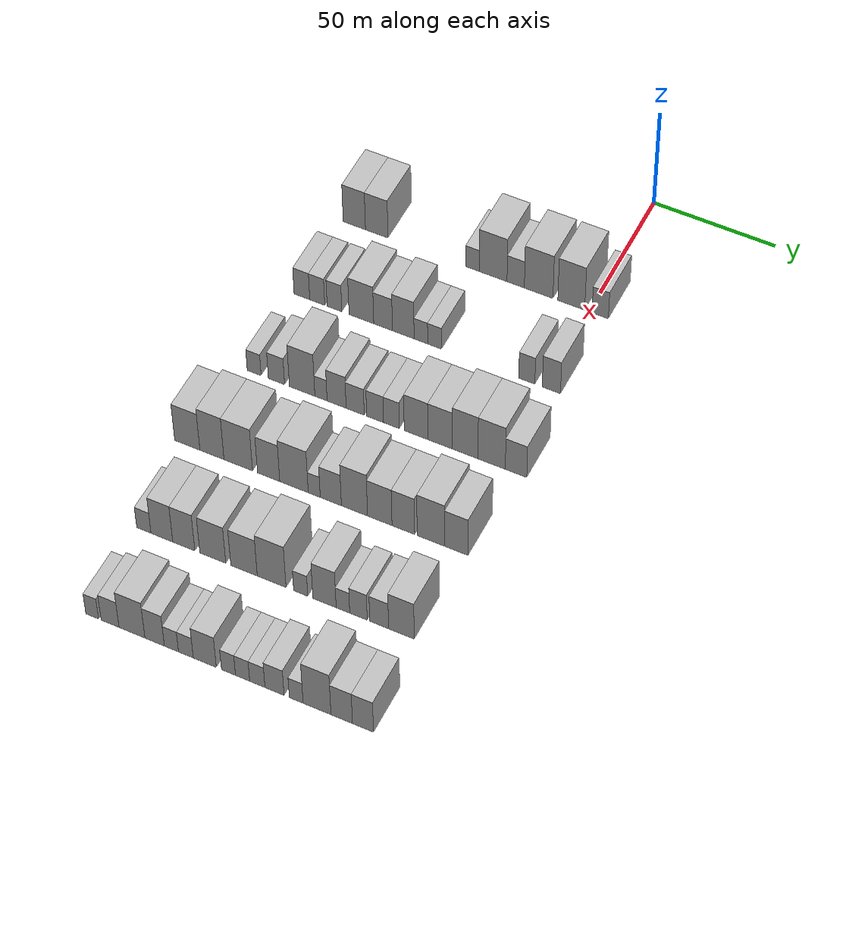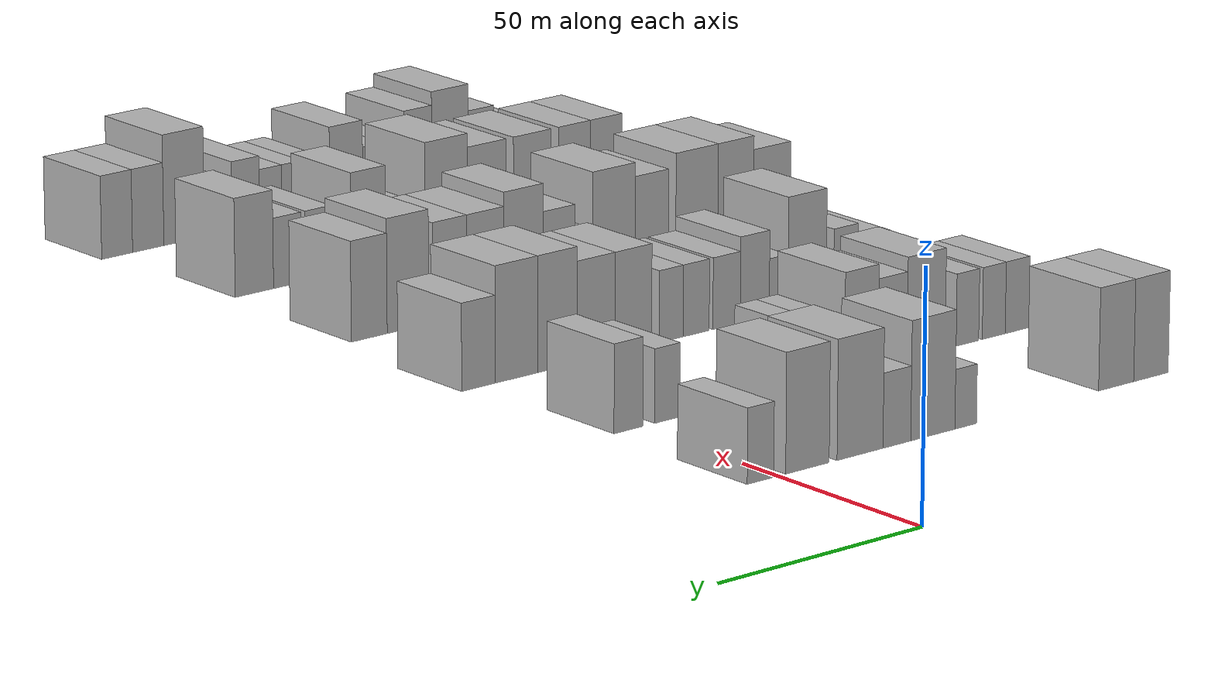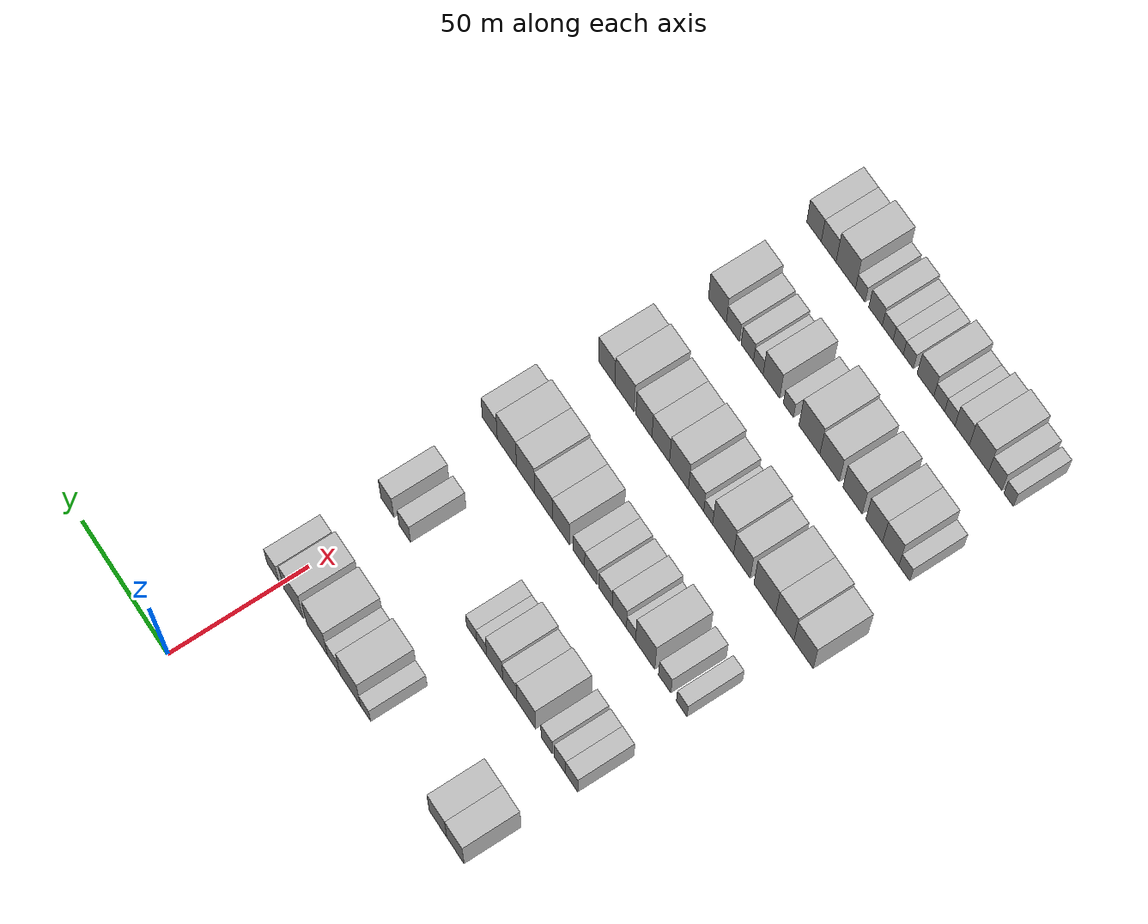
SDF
<sdf version="1.6">
 <world name="default">
  <model name="building_59">
   <static>1</static>
   <pose>50.0000 -98.0657 0 0.000000 0.000000 0.000000</pose>
   <link name="link">
    <pose>0 0 10.50 0 0 0</pose>
    <collision name="collision"><geometry><box><size>20.0000 9.4777 21.0000</size></box></geometry></collision>
    <visual name="visual">
     <cast_shadows>0</cast_shadows>
     <geometry><box><size>20.0000 9.4777 21.0000</size></box></geometry>
     <material>
      <script>
       <uri>model://HANNAS_wall/materials/scripts</uri>
       <uri>model://HANNAS_wall/materials/textures</uri>
       <name>vrc/HANNAS_wall</name>
      </script>
     </material>
    </visual>
   </link>
  </model>
  <model name="building_60">
   <static>1</static>
   <pose>50.0000 -88.5477 0 0.000000 0.000000 0.000000</pose>
   <link name="link">
    <pose>0 0 10.50 0 0 0</pose>
    <collision name="collision"><geometry><box><size>20.0000 9.5583 21.0000</size></box></geometry></collision>
    <visual name="visual">
     <cast_shadows>0</cast_shadows>
     <geometry><box><size>20.0000 9.5583 21.0000</size></box></geometry>
     <material>
      <script>
       <uri>model://HANNAS_wall/materials/scripts</uri>
       <uri>model://HANNAS_wall/materials/textures</uri>
       <name>vrc/HANNAS_wall</name>
      </script>
     </material>
    </visual>
   </link>
  </model>
  <model name="building_61">
   <static>1</static>
   <pose>50.0000 -48.2554 0 0.000000 0.000000 0.000000</pose>
   <link name="link">
    <pose>0 0 6.00 0 0 0</pose>
    <collision name="collision"><geometry><box><size>20.0000 5.6754 12.0000</size></box></geometry></collision>
    <visual name="visual">
     <cast_shadows>0</cast_shadows>
     <geometry><box><size>20.0000 5.6754 12.0000</size></box></geometry>
     <material>
      <script>
       <uri>model://HANNAS_wall/materials/scripts</uri>
       <uri>model://HANNAS_wall/materials/textures</uri>
       <name>vrc/HANNAS_wall</name>
      </script>
     </material>
    </visual>
   </link>
  </model>
  <model name="building_62">
   <static>1</static>
   <pose>50.0000 -39.6588 0 0.000000 0.000000 0.000000</pose>
   <link name="link">
    <pose>0 0 12.00 0 0 0</pose>
    <collision name="collision"><geometry><box><size>20.0000 11.5177 24.0000</size></box></geometry></collision>
    <visual name="visual">
     <cast_shadows>0</cast_shadows>
     <geometry><box><size>20.0000 11.5177 24.0000</size></box></geometry>
     <material>
      <script>
       <uri>model://HANNAS_wall/materials/scripts</uri>
       <uri>model://HANNAS_wall/materials/textures</uri>
       <name>vrc/HANNAS_wall</name>
      </script>
     </material>
    </visual>
   </link>
  </model>
  <model name="building_63">
   <static>1</static>
   <pose>50.0000 -30.3144 0 0.000000 0.000000 0.000000</pose>
   <link name="link">
    <pose>0 0 7.50 0 0 0</pose>
    <collision name="collision"><geometry><box><size>20.0000 7.1711 15.0000</size></box></geometry></collision>
    <visual name="visual">
     <cast_shadows>0</cast_shadows>
     <geometry><box><size>20.0000 7.1711 15.0000</size></box></geometry>
     <material>
      <script>
       <uri>model://HANNAS_wall/materials/scripts</uri>
       <uri>model://HANNAS_wall/materials/textures</uri>
       <name>vrc/HANNAS_wall</name>
      </script>
     </material>
    </visual>
   </link>
  </model>
  <model name="building_64">
   <static>1</static>
   <pose>50.0000 -20.8321 0 0.000000 0.000000 0.000000</pose>
   <link name="link">
    <pose>0 0 12.00 0 0 0</pose>
    <collision name="collision"><geometry><box><size>20.0000 11.7934 24.0000</size></box></geometry></collision>
    <visual name="visual">
     <cast_shadows>0</cast_shadows>
     <geometry><box><size>20.0000 11.7934 24.0000</size></box></geometry>
     <material>
      <script>
       <uri>model://HANNAS_wall/materials/scripts</uri>
       <uri>model://HANNAS_wall/materials/textures</uri>
       <name>vrc/HANNAS_wall</name>
      </script>
     </material>
    </visual>
   </link>
  </model>
  <model name="building_65">
   <static>1</static>
   <pose>50.0000 -7.4332 0 0.000000 0.000000 0.000000</pose>
   <link name="link">
    <pose>0 0 12.00 0 0 0</pose>
    <collision name="collision"><geometry><box><size>20.0000 11.0044 24.0000</size></box></geometry></collision>
    <visual name="visual">
     <cast_shadows>0</cast_shadows>
     <geometry><box><size>20.0000 11.0044 24.0000</size></box></geometry>
     <material>
      <script>
       <uri>model://HANNAS_wall/materials/scripts</uri>
       <uri>model://HANNAS_wall/materials/textures</uri>
       <name>vrc/HANNAS_wall</name>
      </script>
     </material>
    </visual>
   </link>
  </model>
  <model name="building_66">
   <static>1</static>
   <pose>50.0000 4.3997 0 0.000000 0.000000 0.000000</pose>
   <link name="link">
    <pose>0 0 7.50 0 0 0</pose>
    <collision name="collision"><geometry><box><size>20.0000 6.6614 15.0000</size></box></geometry></collision>
    <visual name="visual">
     <cast_shadows>0</cast_shadows>
     <geometry><box><size>20.0000 6.6614 15.0000</size></box></geometry>
     <material>
      <script>
       <uri>model://HANNAS_wall/materials/scripts</uri>
       <uri>model://HANNAS_wall/materials/textures</uri>
       <name>vrc/HANNAS_wall</name>
      </script>
     </material>
    </visual>
   </link>
  </model>
  <model name="building_197">
   <static>1</static>
   <pose>90.0000 -99.7617 0 0.000000 0.000000 0.000000</pose>
   <link name="link">
    <pose>0 0 7.50 0 0 0</pose>
    <collision name="collision"><geometry><box><size>20.0000 6.5609 15.0000</size></box></geometry></collision>
    <visual name="visual">
     <cast_shadows>0</cast_shadows>
     <geometry><box><size>20.0000 6.5609 15.0000</size></box></geometry>
     <material>
      <script>
       <uri>model://HANNAS_wall/materials/scripts</uri>
       <uri>model://HANNAS_wall/materials/textures</uri>
       <name>vrc/HANNAS_wall</name>
      </script>
     </material>
    </visual>
   </link>
  </model>
  <model name="building_198">
   <static>1</static>
   <pose>90.0000 -93.3326 0 0.000000 0.000000 0.000000</pose>
   <link name="link">
    <pose>0 0 7.50 0 0 0</pose>
    <collision name="collision"><geometry><box><size>20.0000 6.2973 15.0000</size></box></geometry></collision>
    <visual name="visual">
     <cast_shadows>0</cast_shadows>
     <geometry><box><size>20.0000 6.2973 15.0000</size></box></geometry>
     <material>
      <script>
       <uri>model://HANNAS_wall/materials/scripts</uri>
       <uri>model://HANNAS_wall/materials/textures</uri>
       <name>vrc/HANNAS_wall</name>
      </script>
     </material>
    </visual>
   </link>
  </model>
  <model name="building_199">
   <static>1</static>
   <pose>90.0000 -86.1024 0 0.000000 0.000000 0.000000</pose>
   <link name="link">
    <pose>0 0 7.50 0 0 0</pose>
    <collision name="collision"><geometry><box><size>20.0000 6.1631 15.0000</size></box></geometry></collision>
    <visual name="visual">
     <cast_shadows>0</cast_shadows>
     <geometry><box><size>20.0000 6.1631 15.0000</size></box></geometry>
     <material>
      <script>
       <uri>model://HANNAS_wall/materials/scripts</uri>
       <uri>model://HANNAS_wall/materials/textures</uri>
       <name>vrc/HANNAS_wall</name>
      </script>
     </material>
    </visual>
   </link>
  </model>
  <model name="building_200">
   <static>1</static>
   <pose>90.0000 -74.8741 0 0.000000 0.000000 0.000000</pose>
   <link name="link">
    <pose>0 0 10.50 0 0 0</pose>
    <collision name="collision"><geometry><box><size>20.0000 10.2935 21.0000</size></box></geometry></collision>
    <visual name="visual">
     <cast_shadows>0</cast_shadows>
     <geometry><box><size>20.0000 10.2935 21.0000</size></box></geometry>
     <material>
      <script>
       <uri>model://HANNAS_wall/materials/scripts</uri>
       <uri>model://HANNAS_wall/materials/textures</uri>
       <name>vrc/HANNAS_wall</name>
      </script>
     </material>
    </visual>
   </link>
  </model>
  <model name="building_201">
   <static>1</static>
   <pose>90.0000 -65.8512 0 0.000000 0.000000 0.000000</pose>
   <link name="link">
    <pose>0 0 9.00 0 0 0</pose>
    <collision name="collision"><geometry><box><size>20.0000 7.7523 18.0000</size></box></geometry></collision>
    <visual name="visual">
     <cast_shadows>0</cast_shadows>
     <geometry><box><size>20.0000 7.7523 18.0000</size></box></geometry>
     <material>
      <script>
       <uri>model://HANNAS_wall/materials/scripts</uri>
       <uri>model://HANNAS_wall/materials/textures</uri>
       <name>vrc/HANNAS_wall</name>
      </script>
     </material>
    </visual>
   </link>
  </model>
  <model name="building_202">
   <static>1</static>
   <pose>90.0000 -57.5063 0 0.000000 0.000000 0.000000</pose>
   <link name="link">
    <pose>0 0 10.50 0 0 0</pose>
    <collision name="collision"><geometry><box><size>20.0000 8.9376 21.0000</size></box></geometry></collision>
    <visual name="visual">
     <cast_shadows>0</cast_shadows>
     <geometry><box><size>20.0000 8.9376 21.0000</size></box></geometry>
     <material>
      <script>
       <uri>model://HANNAS_wall/materials/scripts</uri>
       <uri>model://HANNAS_wall/materials/textures</uri>
       <name>vrc/HANNAS_wall</name>
      </script>
     </material>
    </visual>
   </link>
  </model>
  <model name="building_203">
   <static>1</static>
   <pose>90.0000 -50.2398 0 0.000000 0.000000 0.000000</pose>
   <link name="link">
    <pose>0 0 6.00 0 0 0</pose>
    <collision name="collision"><geometry><box><size>20.0000 5.5954 12.0000</size></box></geometry></collision>
    <visual name="visual">
     <cast_shadows>0</cast_shadows>
     <geometry><box><size>20.0000 5.5954 12.0000</size></box></geometry>
     <material>
      <script>
       <uri>model://HANNAS_wall/materials/scripts</uri>
       <uri>model://HANNAS_wall/materials/textures</uri>
       <name>vrc/HANNAS_wall</name>
      </script>
     </material>
    </visual>
   </link>
  </model>
  <model name="building_204">
   <static>1</static>
   <pose>90.0000 -44.6029 0 0.000000 0.000000 0.000000</pose>
   <link name="link">
    <pose>0 0 6.00 0 0 0</pose>
    <collision name="collision"><geometry><box><size>20.0000 5.6784 12.0000</size></box></geometry></collision>
    <visual name="visual">
     <cast_shadows>0</cast_shadows>
     <geometry><box><size>20.0000 5.6784 12.0000</size></box></geometry>
     <material>
      <script>
       <uri>model://HANNAS_wall/materials/scripts</uri>
       <uri>model://HANNAS_wall/materials/textures</uri>
       <name>vrc/HANNAS_wall</name>
      </script>
     </material>
    </visual>
   </link>
  </model>
  <model name="building_205">
   <static>1</static>
   <pose>90.0000 -7.0333 0 0.000000 0.000000 0.000000</pose>
   <link name="link">
    <pose>0 0 7.50 0 0 0</pose>
    <collision name="collision"><geometry><box><size>20.0000 6.4869 15.0000</size></box></geometry></collision>
    <visual name="visual">
     <cast_shadows>0</cast_shadows>
     <geometry><box><size>20.0000 6.4869 15.0000</size></box></geometry>
     <material>
      <script>
       <uri>model://HANNAS_wall/materials/scripts</uri>
       <uri>model://HANNAS_wall/materials/textures</uri>
       <name>vrc/HANNAS_wall</name>
      </script>
     </material>
    </visual>
   </link>
  </model>
  <model name="building_206">
   <static>1</static>
   <pose>90.0000 2.8644 0 0.000000 0.000000 0.000000</pose>
   <link name="link">
    <pose>0 0 9.00 0 0 0</pose>
    <collision name="collision"><geometry><box><size>20.0000 7.3085 18.0000</size></box></geometry></collision>
    <visual name="visual">
     <cast_shadows>0</cast_shadows>
     <geometry><box><size>20.0000 7.3085 18.0000</size></box></geometry>
     <material>
      <script>
       <uri>model://HANNAS_wall/materials/scripts</uri>
       <uri>model://HANNAS_wall/materials/textures</uri>
       <name>vrc/HANNAS_wall</name>
      </script>
     </material>
    </visual>
   </link>
  </model>
  <model name="building_333">
   <static>1</static>
   <pose>130.0000 -98.7478 0 0.000000 0.000000 0.000000</pose>
   <link name="link">
    <pose>0 0 6.00 0 0 0</pose>
    <collision name="collision"><geometry><box><size>20.0000 5.7404 12.0000</size></box></geometry></collision>
    <visual name="visual">
     <cast_shadows>0</cast_shadows>
     <geometry><box><size>20.0000 5.7404 12.0000</size></box></geometry>
     <material>
      <script>
       <uri>model://HANNAS_wall/materials/scripts</uri>
       <uri>model://HANNAS_wall/materials/textures</uri>
       <name>vrc/HANNAS_wall</name>
      </script>
     </material>
    </visual>
   </link>
  </model>
  <model name="building_334">
   <static>1</static>
   <pose>130.0000 -89.5169 0 0.000000 0.000000 0.000000</pose>
   <link name="link">
    <pose>0 0 7.50 0 0 0</pose>
    <collision name="collision"><geometry><box><size>20.0000 6.7214 15.0000</size></box></geometry></collision>
    <visual name="visual">
     <cast_shadows>0</cast_shadows>
     <geometry><box><size>20.0000 6.7214 15.0000</size></box></geometry>
     <material>
      <script>
       <uri>model://HANNAS_wall/materials/scripts</uri>
       <uri>model://HANNAS_wall/materials/textures</uri>
       <name>vrc/HANNAS_wall</name>
      </script>
     </material>
    </visual>
   </link>
  </model>
  <model name="building_335">
   <static>1</static>
   <pose>130.0000 -78.9233 0 0.000000 0.000000 0.000000</pose>
   <link name="link">
    <pose>0 0 12.00 0 0 0</pose>
    <collision name="collision"><geometry><box><size>20.0000 10.4658 24.0000</size></box></geometry></collision>
    <visual name="visual">
     <cast_shadows>0</cast_shadows>
     <geometry><box><size>20.0000 10.4658 24.0000</size></box></geometry>
     <material>
      <script>
       <uri>model://HANNAS_wall/materials/scripts</uri>
       <uri>model://HANNAS_wall/materials/textures</uri>
       <name>vrc/HANNAS_wall</name>
      </script>
     </material>
    </visual>
   </link>
  </model>
  <model name="building_336">
   <static>1</static>
   <pose>130.0000 -71.1840 0 0.000000 0.000000 0.000000</pose>
   <link name="link">
    <pose>0 0 6.00 0 0 0</pose>
    <collision name="collision"><geometry><box><size>20.0000 5.0127 12.0000</size></box></geometry></collision>
    <visual name="visual">
     <cast_shadows>0</cast_shadows>
     <geometry><box><size>20.0000 5.0127 12.0000</size></box></geometry>
     <material>
      <script>
       <uri>model://HANNAS_wall/materials/scripts</uri>
       <uri>model://HANNAS_wall/materials/textures</uri>
       <name>vrc/HANNAS_wall</name>
      </script>
     </material>
    </visual>
   </link>
  </model>
  <model name="building_337">
   <static>1</static>
   <pose>130.0000 -64.7865 0 0.000000 0.000000 0.000000</pose>
   <link name="link">
    <pose>0 0 9.00 0 0 0</pose>
    <collision name="collision"><geometry><box><size>20.0000 7.7822 18.0000</size></box></geometry></collision>
    <visual name="visual">
     <cast_shadows>0</cast_shadows>
     <geometry><box><size>20.0000 7.7822 18.0000</size></box></geometry>
     <material>
      <script>
       <uri>model://HANNAS_wall/materials/scripts</uri>
       <uri>model://HANNAS_wall/materials/textures</uri>
       <name>vrc/HANNAS_wall</name>
      </script>
     </material>
    </visual>
   </link>
  </model>
  <model name="building_338">
   <static>1</static>
   <pose>130.0000 -57.2152 0 0.000000 0.000000 0.000000</pose>
   <link name="link">
    <pose>0 0 7.50 0 0 0</pose>
    <collision name="collision"><geometry><box><size>20.0000 7.3605 15.0000</size></box></geometry></collision>
    <visual name="visual">
     <cast_shadows>0</cast_shadows>
     <geometry><box><size>20.0000 7.3605 15.0000</size></box></geometry>
     <material>
      <script>
       <uri>model://HANNAS_wall/materials/scripts</uri>
       <uri>model://HANNAS_wall/materials/textures</uri>
       <name>vrc/HANNAS_wall</name>
      </script>
     </material>
    </visual>
   </link>
  </model>
  <model name="building_339">
   <static>1</static>
   <pose>130.0000 -49.1105 0 0.000000 0.000000 0.000000</pose>
   <link name="link">
    <pose>0 0 7.50 0 0 0</pose>
    <collision name="collision"><geometry><box><size>20.0000 6.8489 15.0000</size></box></geometry></collision>
    <visual name="visual">
     <cast_shadows>0</cast_shadows>
     <geometry><box><size>20.0000 6.8489 15.0000</size></box></geometry>
     <material>
      <script>
       <uri>model://HANNAS_wall/materials/scripts</uri>
       <uri>model://HANNAS_wall/materials/textures</uri>
       <name>vrc/HANNAS_wall</name>
      </script>
     </material>
    </visual>
   </link>
  </model>
  <model name="building_340">
   <static>1</static>
   <pose>130.0000 -42.5082 0 0.000000 0.000000 0.000000</pose>
   <link name="link">
    <pose>0 0 7.50 0 0 0</pose>
    <collision name="collision"><geometry><box><size>20.0000 6.3557 15.0000</size></box></geometry></collision>
    <visual name="visual">
     <cast_shadows>0</cast_shadows>
     <geometry><box><size>20.0000 6.3557 15.0000</size></box></geometry>
     <material>
      <script>
       <uri>model://HANNAS_wall/materials/scripts</uri>
       <uri>model://HANNAS_wall/materials/textures</uri>
       <name>vrc/HANNAS_wall</name>
      </script>
     </material>
    </visual>
   </link>
  </model>
  <model name="building_341">
   <static>1</static>
   <pose>130.0000 -32.5597 0 0.000000 0.000000 0.000000</pose>
   <link name="link">
    <pose>0 0 10.50 0 0 0</pose>
    <collision name="collision"><geometry><box><size>20.0000 9.5412 21.0000</size></box></geometry></collision>
    <visual name="visual">
     <cast_shadows>0</cast_shadows>
     <geometry><box><size>20.0000 9.5412 21.0000</size></box></geometry>
     <material>
      <script>
       <uri>model://HANNAS_wall/materials/scripts</uri>
       <uri>model://HANNAS_wall/materials/textures</uri>
       <name>vrc/HANNAS_wall</name>
      </script>
     </material>
    </visual>
   </link>
  </model>
  <model name="building_342">
   <static>1</static>
   <pose>130.0000 -22.8524 0 0.000000 0.000000 0.000000</pose>
   <link name="link">
    <pose>0 0 10.50 0 0 0</pose>
    <collision name="collision"><geometry><box><size>20.0000 9.8734 21.0000</size></box></geometry></collision>
    <visual name="visual">
     <cast_shadows>0</cast_shadows>
     <geometry><box><size>20.0000 9.8734 21.0000</size></box></geometry>
     <material>
      <script>
       <uri>model://HANNAS_wall/materials/scripts</uri>
       <uri>model://HANNAS_wall/materials/textures</uri>
       <name>vrc/HANNAS_wall</name>
      </script>
     </material>
    </visual>
   </link>
  </model>
  <model name="building_343">
   <static>1</static>
   <pose>130.0000 -12.8239 0 0.000000 0.000000 0.000000</pose>
   <link name="link">
    <pose>0 0 12.00 0 0 0</pose>
    <collision name="collision"><geometry><box><size>20.0000 10.1836 24.0000</size></box></geometry></collision>
    <visual name="visual">
     <cast_shadows>0</cast_shadows>
     <geometry><box><size>20.0000 10.1836 24.0000</size></box></geometry>
     <material>
      <script>
       <uri>model://HANNAS_wall/materials/scripts</uri>
       <uri>model://HANNAS_wall/materials/textures</uri>
       <name>vrc/HANNAS_wall</name>
      </script>
     </material>
    </visual>
   </link>
  </model>
  <model name="building_344">
   <static>1</static>
   <pose>130.0000 -2.3081 0 0.000000 0.000000 0.000000</pose>
   <link name="link">
    <pose>0 0 12.00 0 0 0</pose>
    <collision name="collision"><geometry><box><size>20.0000 10.8480 24.0000</size></box></geometry></collision>
    <visual name="visual">
     <cast_shadows>0</cast_shadows>
     <geometry><box><size>20.0000 10.8480 24.0000</size></box></geometry>
     <material>
      <script>
       <uri>model://HANNAS_wall/materials/scripts</uri>
       <uri>model://HANNAS_wall/materials/textures</uri>
       <name>vrc/HANNAS_wall</name>
      </script>
     </material>
    </visual>
   </link>
  </model>
  <model name="building_345">
   <static>1</static>
   <pose>130.0000 7.3540 0 0.000000 0.000000 0.000000</pose>
   <link name="link">
    <pose>0 0 9.00 0 0 0</pose>
    <collision name="collision"><geometry><box><size>20.0000 8.4761 18.0000</size></box></geometry></collision>
    <visual name="visual">
     <cast_shadows>0</cast_shadows>
     <geometry><box><size>20.0000 8.4761 18.0000</size></box></geometry>
     <material>
      <script>
       <uri>model://HANNAS_wall/materials/scripts</uri>
       <uri>model://HANNAS_wall/materials/textures</uri>
       <name>vrc/HANNAS_wall</name>
      </script>
     </material>
    </visual>
   </link>
  </model>
  <model name="building_469">
   <static>1</static>
   <pose>170.0000 -104.8446 0 0.000000 0.000000 0.000000</pose>
   <link name="link">
    <pose>0 0 10.50 0 0 0</pose>
    <collision name="collision"><geometry><box><size>20.0000 10.3075 21.0000</size></box></geometry></collision>
    <visual name="visual">
     <cast_shadows>0</cast_shadows>
     <geometry><box><size>20.0000 10.3075 21.0000</size></box></geometry>
     <material>
      <script>
       <uri>model://HANNAS_wall/materials/scripts</uri>
       <uri>model://HANNAS_wall/materials/textures</uri>
       <name>vrc/HANNAS_wall</name>
      </script>
     </material>
    </visual>
   </link>
  </model>
  <model name="building_470">
   <static>1</static>
   <pose>170.0000 -94.7613 0 0.000000 0.000000 0.000000</pose>
   <link name="link">
    <pose>0 0 12.00 0 0 0</pose>
    <collision name="collision"><geometry><box><size>20.0000 9.8592 24.0000</size></box></geometry></collision>
    <visual name="visual">
     <cast_shadows>0</cast_shadows>
     <geometry><box><size>20.0000 9.8592 24.0000</size></box></geometry>
     <material>
      <script>
       <uri>model://HANNAS_wall/materials/scripts</uri>
       <uri>model://HANNAS_wall/materials/textures</uri>
       <name>vrc/HANNAS_wall</name>
      </script>
     </material>
    </visual>
   </link>
  </model>
  <model name="building_471">
   <static>1</static>
   <pose>170.0000 -84.0153 0 0.000000 0.000000 0.000000</pose>
   <link name="link">
    <pose>0 0 12.00 0 0 0</pose>
    <collision name="collision"><geometry><box><size>20.0000 11.6328 24.0000</size></box></geometry></collision>
    <visual name="visual">
     <cast_shadows>0</cast_shadows>
     <geometry><box><size>20.0000 11.6328 24.0000</size></box></geometry>
     <material>
      <script>
       <uri>model://HANNAS_wall/materials/scripts</uri>
       <uri>model://HANNAS_wall/materials/textures</uri>
       <name>vrc/HANNAS_wall</name>
      </script>
     </material>
    </visual>
   </link>
  </model>
  <model name="building_472">
   <static>1</static>
   <pose>170.0000 -71.6988 0 0.000000 0.000000 0.000000</pose>
   <link name="link">
    <pose>0 0 10.50 0 0 0</pose>
    <collision name="collision"><geometry><box><size>20.0000 9.0001 21.0000</size></box></geometry></collision>
    <visual name="visual">
     <cast_shadows>0</cast_shadows>
     <geometry><box><size>20.0000 9.0001 21.0000</size></box></geometry>
     <material>
      <script>
       <uri>model://HANNAS_wall/materials/scripts</uri>
       <uri>model://HANNAS_wall/materials/textures</uri>
       <name>vrc/HANNAS_wall</name>
      </script>
     </material>
    </visual>
   </link>
  </model>
  <model name="building_473">
   <static>1</static>
   <pose>170.0000 -61.4677 0 0.000000 0.000000 0.000000</pose>
   <link name="link">
    <pose>0 0 12.00 0 0 0</pose>
    <collision name="collision"><geometry><box><size>20.0000 11.4622 24.0000</size></box></geometry></collision>
    <visual name="visual">
     <cast_shadows>0</cast_shadows>
     <geometry><box><size>20.0000 11.4622 24.0000</size></box></geometry>
     <material>
      <script>
       <uri>model://HANNAS_wall/materials/scripts</uri>
       <uri>model://HANNAS_wall/materials/textures</uri>
       <name>vrc/HANNAS_wall</name>
      </script>
     </material>
    </visual>
   </link>
  </model>
  <model name="building_474">
   <static>1</static>
   <pose>170.0000 -53.3344 0 0.000000 0.000000 0.000000</pose>
   <link name="link">
    <pose>0 0 6.00 0 0 0</pose>
    <collision name="collision"><geometry><box><size>20.0000 4.8044 12.0000</size></box></geometry></collision>
    <visual name="visual">
     <cast_shadows>0</cast_shadows>
     <geometry><box><size>20.0000 4.8044 12.0000</size></box></geometry>
     <material>
      <script>
       <uri>model://HANNAS_wall/materials/scripts</uri>
       <uri>model://HANNAS_wall/materials/textures</uri>
       <name>vrc/HANNAS_wall</name>
      </script>
     </material>
    </visual>
   </link>
  </model>
  <model name="building_475">
   <static>1</static>
   <pose>170.0000 -46.6991 0 0.000000 0.000000 0.000000</pose>
   <link name="link">
    <pose>0 0 9.00 0 0 0</pose>
    <collision name="collision"><geometry><box><size>20.0000 8.4661 18.0000</size></box></geometry></collision>
    <visual name="visual">
     <cast_shadows>0</cast_shadows>
     <geometry><box><size>20.0000 8.4661 18.0000</size></box></geometry>
     <material>
      <script>
       <uri>model://HANNAS_wall/materials/scripts</uri>
       <uri>model://HANNAS_wall/materials/textures</uri>
       <name>vrc/HANNAS_wall</name>
      </script>
     </material>
    </visual>
   </link>
  </model>
  <model name="building_476">
   <static>1</static>
   <pose>170.0000 -37.2568 0 0.000000 0.000000 0.000000</pose>
   <link name="link">
    <pose>0 0 12.00 0 0 0</pose>
    <collision name="collision"><geometry><box><size>20.0000 10.4187 24.0000</size></box></geometry></collision>
    <visual name="visual">
     <cast_shadows>0</cast_shadows>
     <geometry><box><size>20.0000 10.4187 24.0000</size></box></geometry>
     <material>
      <script>
       <uri>model://HANNAS_wall/materials/scripts</uri>
       <uri>model://HANNAS_wall/materials/textures</uri>
       <name>vrc/HANNAS_wall</name>
      </script>
     </material>
    </visual>
   </link>
  </model>
  <model name="building_477">
   <static>1</static>
   <pose>170.0000 -27.2084 0 0.000000 0.000000 0.000000</pose>
   <link name="link">
    <pose>0 0 10.50 0 0 0</pose>
    <collision name="collision"><geometry><box><size>20.0000 9.6780 21.0000</size></box></geometry></collision>
    <visual name="visual">
     <cast_shadows>0</cast_shadows>
     <geometry><box><size>20.0000 9.6780 21.0000</size></box></geometry>
     <material>
      <script>
       <uri>model://HANNAS_wall/materials/scripts</uri>
       <uri>model://HANNAS_wall/materials/textures</uri>
       <name>vrc/HANNAS_wall</name>
      </script>
     </material>
    </visual>
   </link>
  </model>
  <model name="building_478">
   <static>1</static>
   <pose>170.0000 -17.8995 0 0.000000 0.000000 0.000000</pose>
   <link name="link">
    <pose>0 0 10.50 0 0 0</pose>
    <collision name="collision"><geometry><box><size>20.0000 8.9398 21.0000</size></box></geometry></collision>
    <visual name="visual">
     <cast_shadows>0</cast_shadows>
     <geometry><box><size>20.0000 8.9398 21.0000</size></box></geometry>
     <material>
      <script>
       <uri>model://HANNAS_wall/materials/scripts</uri>
       <uri>model://HANNAS_wall/materials/textures</uri>
       <name>vrc/HANNAS_wall</name>
      </script>
     </material>
    </visual>
   </link>
  </model>
  <model name="building_479">
   <static>1</static>
   <pose>170.0000 -7.0554 0 0.000000 0.000000 0.000000</pose>
   <link name="link">
    <pose>0 0 12.00 0 0 0</pose>
    <collision name="collision"><geometry><box><size>20.0000 10.7483 24.0000</size></box></geometry></collision>
    <visual name="visual">
     <cast_shadows>0</cast_shadows>
     <geometry><box><size>20.0000 10.7483 24.0000</size></box></geometry>
     <material>
      <script>
       <uri>model://HANNAS_wall/materials/scripts</uri>
       <uri>model://HANNAS_wall/materials/textures</uri>
       <name>vrc/HANNAS_wall</name>
      </script>
     </material>
    </visual>
   </link>
  </model>
  <model name="building_480">
   <static>1</static>
   <pose>170.0000 2.9032 0 0.000000 0.000000 0.000000</pose>
   <link name="link">
    <pose>0 0 10.50 0 0 0</pose>
    <collision name="collision"><geometry><box><size>20.0000 9.1689 21.0000</size></box></geometry></collision>
    <visual name="visual">
     <cast_shadows>0</cast_shadows>
     <geometry><box><size>20.0000 9.1689 21.0000</size></box></geometry>
     <material>
      <script>
       <uri>model://HANNAS_wall/materials/scripts</uri>
       <uri>model://HANNAS_wall/materials/textures</uri>
       <name>vrc/HANNAS_wall</name>
      </script>
     </material>
    </visual>
   </link>
  </model>
  <model name="building_605">
   <static>1</static>
   <pose>210.0000 -100.4633 0 0.000000 0.000000 0.000000</pose>
   <link name="link">
    <pose>0 0 6.00 0 0 0</pose>
    <collision name="collision"><geometry><box><size>20.0000 5.7466 12.0000</size></box></geometry></collision>
    <visual name="visual">
     <cast_shadows>0</cast_shadows>
     <geometry><box><size>20.0000 5.7466 12.0000</size></box></geometry>
     <material>
      <script>
       <uri>model://HANNAS_wall/materials/scripts</uri>
       <uri>model://HANNAS_wall/materials/textures</uri>
       <name>vrc/HANNAS_wall</name>
      </script>
     </material>
    </visual>
   </link>
  </model>
  <model name="building_606">
   <static>1</static>
   <pose>210.0000 -93.2059 0 0.000000 0.000000 0.000000</pose>
   <link name="link">
    <pose>0 0 10.50 0 0 0</pose>
    <collision name="collision"><geometry><box><size>20.0000 8.7683 21.0000</size></box></geometry></collision>
    <visual name="visual">
     <cast_shadows>0</cast_shadows>
     <geometry><box><size>20.0000 8.7683 21.0000</size></box></geometry>
     <material>
      <script>
       <uri>model://HANNAS_wall/materials/scripts</uri>
       <uri>model://HANNAS_wall/materials/textures</uri>
       <name>vrc/HANNAS_wall</name>
      </script>
     </material>
    </visual>
   </link>
  </model>
  <model name="building_607">
   <static>1</static>
   <pose>210.0000 -84.3900 0 0.000000 0.000000 0.000000</pose>
   <link name="link">
    <pose>0 0 10.50 0 0 0</pose>
    <collision name="collision"><geometry><box><size>20.0000 8.8634 21.0000</size></box></geometry></collision>
    <visual name="visual">
     <cast_shadows>0</cast_shadows>
     <geometry><box><size>20.0000 8.8634 21.0000</size></box></geometry>
     <material>
      <script>
       <uri>model://HANNAS_wall/materials/scripts</uri>
       <uri>model://HANNAS_wall/materials/textures</uri>
       <name>vrc/HANNAS_wall</name>
      </script>
     </material>
    </visual>
   </link>
  </model>
  <model name="building_608">
   <static>1</static>
   <pose>210.0000 -72.7926 0 0.000000 0.000000 0.000000</pose>
   <link name="link">
    <pose>0 0 10.50 0 0 0</pose>
    <collision name="collision"><geometry><box><size>20.0000 10.3315 21.0000</size></box></geometry></collision>
    <visual name="visual">
     <cast_shadows>0</cast_shadows>
     <geometry><box><size>20.0000 10.3315 21.0000</size></box></geometry>
     <material>
      <script>
       <uri>model://HANNAS_wall/materials/scripts</uri>
       <uri>model://HANNAS_wall/materials/textures</uri>
       <name>vrc/HANNAS_wall</name>
      </script>
     </material>
    </visual>
   </link>
  </model>
  <model name="building_609">
   <static>1</static>
   <pose>210.0000 -60.3824 0 0.000000 0.000000 0.000000</pose>
   <link name="link">
    <pose>0 0 10.50 0 0 0</pose>
    <collision name="collision"><geometry><box><size>20.0000 10.4888 21.0000</size></box></geometry></collision>
    <visual name="visual">
     <cast_shadows>0</cast_shadows>
     <geometry><box><size>20.0000 10.4888 21.0000</size></box></geometry>
     <material>
      <script>
       <uri>model://HANNAS_wall/materials/scripts</uri>
       <uri>model://HANNAS_wall/materials/textures</uri>
       <name>vrc/HANNAS_wall</name>
      </script>
     </material>
    </visual>
   </link>
  </model>
  <model name="building_610">
   <static>1</static>
   <pose>210.0000 -49.4585 0 0.000000 0.000000 0.000000</pose>
   <link name="link">
    <pose>0 0 12.00 0 0 0</pose>
    <collision name="collision"><geometry><box><size>20.0000 11.3592 24.0000</size></box></geometry></collision>
    <visual name="visual">
     <cast_shadows>0</cast_shadows>
     <geometry><box><size>20.0000 11.3592 24.0000</size></box></geometry>
     <material>
      <script>
       <uri>model://HANNAS_wall/materials/scripts</uri>
       <uri>model://HANNAS_wall/materials/textures</uri>
       <name>vrc/HANNAS_wall</name>
      </script>
     </material>
    </visual>
   </link>
  </model>
  <model name="building_611">
   <static>1</static>
   <pose>210.0000 -38.0156 0 0.000000 0.000000 0.000000</pose>
   <link name="link">
    <pose>0 0 6.00 0 0 0</pose>
    <collision name="collision"><geometry><box><size>20.0000 5.5266 12.0000</size></box></geometry></collision>
    <visual name="visual">
     <cast_shadows>0</cast_shadows>
     <geometry><box><size>20.0000 5.5266 12.0000</size></box></geometry>
     <material>
      <script>
       <uri>model://HANNAS_wall/materials/scripts</uri>
       <uri>model://HANNAS_wall/materials/textures</uri>
       <name>vrc/HANNAS_wall</name>
      </script>
     </material>
    </visual>
   </link>
  </model>
  <model name="building_612">
   <static>1</static>
   <pose>210.0000 -28.6954 0 0.000000 0.000000 0.000000</pose>
   <link name="link">
    <pose>0 0 10.50 0 0 0</pose>
    <collision name="collision"><geometry><box><size>20.0000 9.1138 21.0000</size></box></geometry></collision>
    <visual name="visual">
     <cast_shadows>0</cast_shadows>
     <geometry><box><size>20.0000 9.1138 21.0000</size></box></geometry>
     <material>
      <script>
       <uri>model://HANNAS_wall/materials/scripts</uri>
       <uri>model://HANNAS_wall/materials/textures</uri>
       <name>vrc/HANNAS_wall</name>
      </script>
     </material>
    </visual>
   </link>
  </model>
  <model name="building_613">
   <static>1</static>
   <pose>210.0000 -21.5005 0 0.000000 0.000000 0.000000</pose>
   <link name="link">
    <pose>0 0 6.00 0 0 0</pose>
    <collision name="collision"><geometry><box><size>20.0000 5.2760 12.0000</size></box></geometry></collision>
    <visual name="visual">
     <cast_shadows>0</cast_shadows>
     <geometry><box><size>20.0000 5.2760 12.0000</size></box></geometry>
     <material>
      <script>
       <uri>model://HANNAS_wall/materials/scripts</uri>
       <uri>model://HANNAS_wall/materials/textures</uri>
       <name>vrc/HANNAS_wall</name>
      </script>
     </material>
    </visual>
   </link>
  </model>
  <model name="building_614">
   <static>1</static>
   <pose>210.0000 -15.4656 0 0.000000 0.000000 0.000000</pose>
   <link name="link">
    <pose>0 0 7.50 0 0 0</pose>
    <collision name="collision"><geometry><box><size>20.0000 6.7937 15.0000</size></box></geometry></collision>
    <visual name="visual">
     <cast_shadows>0</cast_shadows>
     <geometry><box><size>20.0000 6.7937 15.0000</size></box></geometry>
     <material>
      <script>
       <uri>model://HANNAS_wall/materials/scripts</uri>
       <uri>model://HANNAS_wall/materials/textures</uri>
       <name>vrc/HANNAS_wall</name>
      </script>
     </material>
    </visual>
   </link>
  </model>
  <model name="building_615">
   <static>1</static>
   <pose>210.0000 -7.4237 0 0.000000 0.000000 0.000000</pose>
   <link name="link">
    <pose>0 0 7.50 0 0 0</pose>
    <collision name="collision"><geometry><box><size>20.0000 7.2901 15.0000</size></box></geometry></collision>
    <visual name="visual">
     <cast_shadows>0</cast_shadows>
     <geometry><box><size>20.0000 7.2901 15.0000</size></box></geometry>
     <material>
      <script>
       <uri>model://HANNAS_wall/materials/scripts</uri>
       <uri>model://HANNAS_wall/materials/textures</uri>
       <name>vrc/HANNAS_wall</name>
      </script>
     </material>
    </visual>
   </link>
  </model>
  <model name="building_616">
   <static>1</static>
   <pose>210.0000 1.1630 0 0.000000 0.000000 0.000000</pose>
   <link name="link">
    <pose>0 0 10.50 0 0 0</pose>
    <collision name="collision"><geometry><box><size>20.0000 9.8833 21.0000</size></box></geometry></collision>
    <visual name="visual">
     <cast_shadows>0</cast_shadows>
     <geometry><box><size>20.0000 9.8833 21.0000</size></box></geometry>
     <material>
      <script>
       <uri>model://HANNAS_wall/materials/scripts</uri>
       <uri>model://HANNAS_wall/materials/textures</uri>
       <name>vrc/HANNAS_wall</name>
      </script>
     </material>
    </visual>
   </link>
  </model>
  <model name="building_751">
   <static>1</static>
   <pose>250.0000 -98.6701 0 0.000000 0.000000 0.000000</pose>
   <link name="link">
    <pose>0 0 6.00 0 0 0</pose>
    <collision name="collision"><geometry><box><size>20.0000 5.0796 12.0000</size></box></geometry></collision>
    <visual name="visual">
     <cast_shadows>0</cast_shadows>
     <geometry><box><size>20.0000 5.0796 12.0000</size></box></geometry>
     <material>
      <script>
       <uri>model://HANNAS_wall/materials/scripts</uri>
       <uri>model://HANNAS_wall/materials/textures</uri>
       <name>vrc/HANNAS_wall</name>
      </script>
     </material>
    </visual>
   </link>
  </model>
  <model name="building_752">
   <static>1</static>
   <pose>250.0000 -91.5833 0 0.000000 0.000000 0.000000</pose>
   <link name="link">
    <pose>0 0 7.50 0 0 0</pose>
    <collision name="collision"><geometry><box><size>20.0000 7.0940 15.0000</size></box></geometry></collision>
    <visual name="visual">
     <cast_shadows>0</cast_shadows>
     <geometry><box><size>20.0000 7.0940 15.0000</size></box></geometry>
     <material>
      <script>
       <uri>model://HANNAS_wall/materials/scripts</uri>
       <uri>model://HANNAS_wall/materials/textures</uri>
       <name>vrc/HANNAS_wall</name>
      </script>
     </material>
    </visual>
   </link>
  </model>
  <model name="building_753">
   <static>1</static>
   <pose>250.0000 -82.9080 0 0.000000 0.000000 0.000000</pose>
   <link name="link">
    <pose>0 0 10.50 0 0 0</pose>
    <collision name="collision"><geometry><box><size>20.0000 10.2565 21.0000</size></box></geometry></collision>
    <visual name="visual">
     <cast_shadows>0</cast_shadows>
     <geometry><box><size>20.0000 10.2565 21.0000</size></box></geometry>
     <material>
      <script>
       <uri>model://HANNAS_wall/materials/scripts</uri>
       <uri>model://HANNAS_wall/materials/textures</uri>
       <name>vrc/HANNAS_wall</name>
      </script>
     </material>
    </visual>
   </link>
  </model>
  <model name="building_754">
   <static>1</static>
   <pose>250.0000 -73.9580 0 0.000000 0.000000 0.000000</pose>
   <link name="link">
    <pose>0 0 9.00 0 0 0</pose>
    <collision name="collision"><geometry><box><size>20.0000 7.6435 18.0000</size></box></geometry></collision>
    <visual name="visual">
     <cast_shadows>0</cast_shadows>
     <geometry><box><size>20.0000 7.6435 18.0000</size></box></geometry>
     <material>
      <script>
       <uri>model://HANNAS_wall/materials/scripts</uri>
       <uri>model://HANNAS_wall/materials/textures</uri>
       <name>vrc/HANNAS_wall</name>
      </script>
     </material>
    </visual>
   </link>
  </model>
  <model name="building_755">
   <static>1</static>
   <pose>250.0000 -67.3689 0 0.000000 0.000000 0.000000</pose>
   <link name="link">
    <pose>0 0 6.00 0 0 0</pose>
    <collision name="collision"><geometry><box><size>20.0000 5.5347 12.0000</size></box></geometry></collision>
    <visual name="visual">
     <cast_shadows>0</cast_shadows>
     <geometry><box><size>20.0000 5.5347 12.0000</size></box></geometry>
     <material>
      <script>
       <uri>model://HANNAS_wall/materials/scripts</uri>
       <uri>model://HANNAS_wall/materials/textures</uri>
       <name>vrc/HANNAS_wall</name>
      </script>
     </material>
    </visual>
   </link>
  </model>
  <model name="building_756">
   <static>1</static>
   <pose>250.0000 -61.7070 0 0.000000 0.000000 0.000000</pose>
   <link name="link">
    <pose>0 0 6.00 0 0 0</pose>
    <collision name="collision"><geometry><box><size>20.0000 5.7892 12.0000</size></box></geometry></collision>
    <visual name="visual">
     <cast_shadows>0</cast_shadows>
     <geometry><box><size>20.0000 5.7892 12.0000</size></box></geometry>
     <material>
      <script>
       <uri>model://HANNAS_wall/materials/scripts</uri>
       <uri>model://HANNAS_wall/materials/textures</uri>
       <name>vrc/HANNAS_wall</name>
      </script>
     </material>
    </visual>
   </link>
  </model>
  <model name="building_757">
   <static>1</static>
   <pose>250.0000 -54.3250 0 0.000000 0.000000 0.000000</pose>
   <link name="link">
    <pose>0 0 9.00 0 0 0</pose>
    <collision name="collision"><geometry><box><size>20.0000 8.9748 18.0000</size></box></geometry></collision>
    <visual name="visual">
     <cast_shadows>0</cast_shadows>
     <geometry><box><size>20.0000 8.9748 18.0000</size></box></geometry>
     <material>
      <script>
       <uri>model://HANNAS_wall/materials/scripts</uri>
       <uri>model://HANNAS_wall/materials/textures</uri>
       <name>vrc/HANNAS_wall</name>
      </script>
     </material>
    </visual>
   </link>
  </model>
  <model name="building_758">
   <static>1</static>
   <pose>250.0000 -45.1170 0 0.000000 0.000000 0.000000</pose>
   <link name="link">
    <pose>0 0 6.00 0 0 0</pose>
    <collision name="collision"><geometry><box><size>20.0000 5.4414 12.0000</size></box></geometry></collision>
    <visual name="visual">
     <cast_shadows>0</cast_shadows>
     <geometry><box><size>20.0000 5.4414 12.0000</size></box></geometry>
     <material>
      <script>
       <uri>model://HANNAS_wall/materials/scripts</uri>
       <uri>model://HANNAS_wall/materials/textures</uri>
       <name>vrc/HANNAS_wall</name>
      </script>
     </material>
    </visual>
   </link>
  </model>
  <model name="building_759">
   <static>1</static>
   <pose>250.0000 -39.6518 0 0.000000 0.000000 0.000000</pose>
   <link name="link">
    <pose>0 0 6.00 0 0 0</pose>
    <collision name="collision"><geometry><box><size>20.0000 5.4890 12.0000</size></box></geometry></collision>
    <visual name="visual">
     <cast_shadows>0</cast_shadows>
     <geometry><box><size>20.0000 5.4890 12.0000</size></box></geometry>
     <material>
      <script>
       <uri>model://HANNAS_wall/materials/scripts</uri>
       <uri>model://HANNAS_wall/materials/textures</uri>
       <name>vrc/HANNAS_wall</name>
      </script>
     </material>
    </visual>
   </link>
  </model>
  <model name="building_760">
   <static>1</static>
   <pose>250.0000 -33.9533 0 0.000000 0.000000 0.000000</pose>
   <link name="link">
    <pose>0 0 6.00 0 0 0</pose>
    <collision name="collision"><geometry><box><size>20.0000 5.9079 12.0000</size></box></geometry></collision>
    <visual name="visual">
     <cast_shadows>0</cast_shadows>
     <geometry><box><size>20.0000 5.9079 12.0000</size></box></geometry>
     <material>
      <script>
       <uri>model://HANNAS_wall/materials/scripts</uri>
       <uri>model://HANNAS_wall/materials/textures</uri>
       <name>vrc/HANNAS_wall</name>
      </script>
     </material>
    </visual>
   </link>
  </model>
  <model name="building_761">
   <static>1</static>
   <pose>250.0000 -27.3208 0 0.000000 0.000000 0.000000</pose>
   <link name="link">
    <pose>0 0 7.50 0 0 0</pose>
    <collision name="collision"><geometry><box><size>20.0000 7.3572 15.0000</size></box></geometry></collision>
    <visual name="visual">
     <cast_shadows>0</cast_shadows>
     <geometry><box><size>20.0000 7.3572 15.0000</size></box></geometry>
     <material>
      <script>
       <uri>model://HANNAS_wall/materials/scripts</uri>
       <uri>model://HANNAS_wall/materials/textures</uri>
       <name>vrc/HANNAS_wall</name>
      </script>
     </material>
    </visual>
   </link>
  </model>
  <model name="building_762">
   <static>1</static>
   <pose>250.0000 -18.9992 0 0.000000 0.000000 0.000000</pose>
   <link name="link">
    <pose>0 0 6.00 0 0 0</pose>
    <collision name="collision"><geometry><box><size>20.0000 5.2860 12.0000</size></box></geometry></collision>
    <visual name="visual">
     <cast_shadows>0</cast_shadows>
     <geometry><box><size>20.0000 5.2860 12.0000</size></box></geometry>
     <material>
      <script>
       <uri>model://HANNAS_wall/materials/scripts</uri>
       <uri>model://HANNAS_wall/materials/textures</uri>
       <name>vrc/HANNAS_wall</name>
      </script>
     </material>
    </visual>
   </link>
  </model>
  <model name="building_763">
   <static>1</static>
   <pose>250.0000 -11.0274 0 0.000000 0.000000 0.000000</pose>
   <link name="link">
    <pose>0 0 12.00 0 0 0</pose>
    <collision name="collision"><geometry><box><size>20.0000 10.6577 24.0000</size></box></geometry></collision>
    <visual name="visual">
     <cast_shadows>0</cast_shadows>
     <geometry><box><size>20.0000 10.6577 24.0000</size></box></geometry>
     <material>
      <script>
       <uri>model://HANNAS_wall/materials/scripts</uri>
       <uri>model://HANNAS_wall/materials/textures</uri>
       <name>vrc/HANNAS_wall</name>
      </script>
     </material>
    </visual>
   </link>
  </model>
  <model name="building_764">
   <static>1</static>
   <pose>250.0000 -1.6176 0 0.000000 0.000000 0.000000</pose>
   <link name="link">
    <pose>0 0 9.00 0 0 0</pose>
    <collision name="collision"><geometry><box><size>20.0000 8.1619 18.0000</size></box></geometry></collision>
    <visual name="visual">
     <cast_shadows>0</cast_shadows>
     <geometry><box><size>20.0000 8.1619 18.0000</size></box></geometry>
     <material>
      <script>
       <uri>model://HANNAS_wall/materials/scripts</uri>
       <uri>model://HANNAS_wall/materials/textures</uri>
       <name>vrc/HANNAS_wall</name>
      </script>
     </material>
    </visual>
   </link>
  </model>
  <model name="building_765">
   <static>1</static>
   <pose>250.0000 6.4539 0 0.000000 0.000000 0.000000</pose>
   <link name="link">
    <pose>0 0 9.00 0 0 0</pose>
    <collision name="collision"><geometry><box><size>20.0000 7.9810 18.0000</size></box></geometry></collision>
    <visual name="visual">
     <cast_shadows>0</cast_shadows>
     <geometry><box><size>20.0000 7.9810 18.0000</size></box></geometry>
     <material>
      <script>
       <uri>model://HANNAS_wall/materials/scripts</uri>
       <uri>model://HANNAS_wall/materials/textures</uri>
       <name>vrc/HANNAS_wall</name>
      </script>
     </material>
    </visual>
   </link>
  </model>
 </world>
</sdf>
